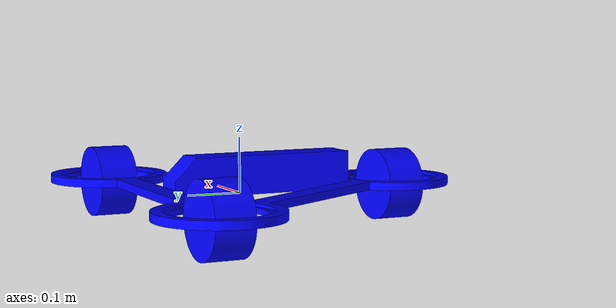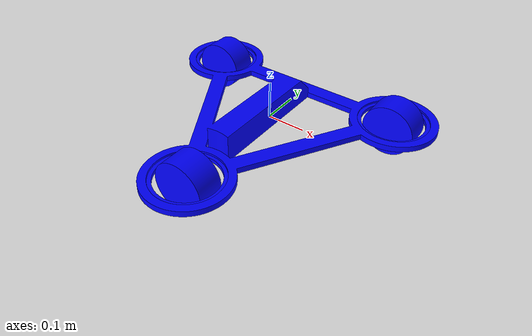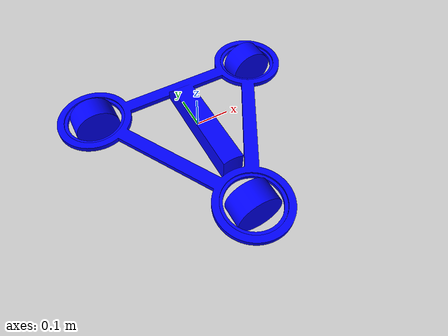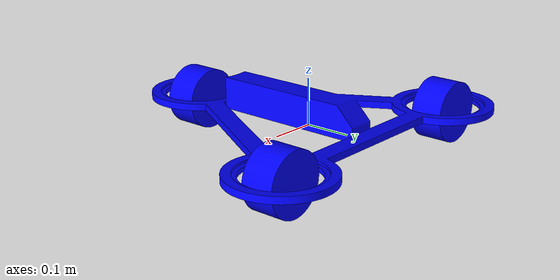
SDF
<?xml version="1.0" ?>

<sdf version="1.6">
    <model name="swerve">
        <link name="base_link">
        <pose> 0 0 0 0 0 0</pose>
        <inertial>
            <inertia>
                <ixx>0.1164</ixx>
                <iyy>0.1080</iyy>
                <izz>0.2243</izz>
                <ixy>0</ixy>
                <ixz>0</ixz>
                <iyz>0</iyz>
            </inertia>
            <mass>3.911</mass>
        </inertial>

        <collision name="collision">
        <geometry>
        <mesh>
            <scale>1 1 1</scale>
            <uri>package://inrof_sim/models/swerve/meshs/swerve_base.stl</uri>
        </mesh>
        </geometry>
        <surface>
            <friction>
                <ode>
                    <mu>0.3</mu>
                    <mu2>0.3</mu2>
                </ode>
            </friction>
        </surface>
        </collision>

        <visual name="visual">
        <geometry>
        <mesh>
            <scale>1 1 1</scale>
            <uri>package://inrof_sim/models/swerve/meshs/swerve_base.stl</uri>
        </mesh>
        </geometry>
        <material>
            <ambient>0.0 0.0 1.0 1.0</ambient>   <diffuse>0.0 0.0 1.0 1.0</diffuse>   <specular>0.1 0.1 0.1 1.0</specular> <emissive>0.0 0.0 0.0 0.0</emissive>
        </material>
        </visual>
        </link>

        <link name="wheel0">
        <pose>0.27 0.155885 0 0 0 0</pose>
        <inertial>
            <inertia>
                <ixx>0.003907</ixx>
                <iyy>0.005691</iyy>
                <izz>0.003907</izz>
                <ixy>0</ixy>
                <ixz>0</ixz>
                <iyz>0</iyz>
            </inertia>
            <mass>2.599764</mass>
        </inertial>

        <collision name="collision">
        <geometry>
        <mesh>
            <scale>1 1 1</scale>
            <uri>package://inrof_sim/models/swerve/meshs/swerve_wheel.stl</uri>
        </mesh>
        </geometry>
        <surface>
            <friction>
                <ode>
                    <mu>0.3</mu>
                    <mu2>0.3</mu2>
                </ode>
            </friction>
        </surface>
        </collision>

        <visual name="visual">
        <geometry>
        <mesh>
            <scale>1 1 1</scale>
            <uri>package://inrof_sim/models/swerve/meshs/swerve_wheel.stl</uri>
        </mesh>
        </geometry>
        <material>
            <ambient>0.0 0.0 1.0 1.0</ambient>   <diffuse>0.0 0.0 1.0 1.0</diffuse>   <specular>0.1 0.1 0.1 1.0</specular> <emissive>0.0 0.0 0.0 0.0</emissive>
        </material>
        </visual>
        </link>

        <link name="wheel1">
        <pose>-0.27 0.155885 0 0 0 0</pose>
        <inertial>
            <inertia>
                <ixx>0.003907</ixx>
                <iyy>0.005691</iyy>
                <izz>0.003907</izz>
                <ixy>0</ixy>
                <ixz>0</ixz>
                <iyz>0</iyz>
            </inertia>
            <mass>2.599764</mass>
        </inertial>

        <collision name="collision">
        <geometry>
        <mesh>
            <scale>1 1 1</scale>
            <uri>package://inrof_sim/models/swerve/meshs/swerve_wheel.stl</uri>
        </mesh>
        </geometry>
        <surface>
            <friction>
                <ode>
                    <mu>1.07</mu>
                    <mu2>1.07</mu2>
                </ode>
            </friction>
        </surface>
        </collision>

        <visual name="visual">
        <geometry>
        <mesh>
            <scale>1 1 1</scale>
            <uri>package://inrof_sim/models/swerve/meshs/swerve_wheel.stl</uri>
        </mesh>
        </geometry>
        <material>
            <ambient>0.0 0.0 1.0 1.0</ambient>   <diffuse>0.0 0.0 1.0 1.0</diffuse>   <specular>0.1 0.1 0.1 1.0</specular> <emissive>0.0 0.0 0.0 0.0</emissive>
        </material>
        </visual>
        </link>

        <link name="wheel2">
        <pose>0 -0.311 0 0 0 0</pose>
        <inertial>
            <inertia>
                <ixx>0.003907</ixx>
                <iyy>0.005691</iyy>
                <izz>0.003907</izz>
                <ixy>0</ixy>
                <ixz>0</ixz>
                <iyz>0</iyz>
            </inertia>
            <mass>2.599764</mass>
        </inertial>

        <collision name="collision">
        <geometry>
        <mesh>
            <scale>1 1 1</scale>
            <uri>package://inrof_sim/models/swerve/meshs/swerve_wheel.stl</uri>
        </mesh>
        </geometry>
        <surface>
            <friction>
                <ode>
                    <mu>1.07</mu>
                    <mu2>1.07</mu2>
                </ode>
            </friction>
        </surface>
        </collision>

        <visual name="visual">
        <geometry>
        <mesh>
            <scale>1 1 1</scale>
            <uri>package://inrof_sim/models/swerve/meshs/swerve_wheel.stl</uri>
        </mesh>
        </geometry>
        <material>
            <ambient>0.0 0.0 1.0 1.0</ambient>   <diffuse>0.0 0.0 1.0 1.0</diffuse>   <specular>0.1 0.1 0.1 1.0</specular> <emissive>0.0 0.0 0.0 0.0</emissive>
        </material>
        </visual>
        </link>

        <link name="stare0">
        <pose>0.27 0.155885 0 0 0 0</pose>
        <inertial>
            <inertia>
                <ixx>1</ixx>
                <ixy>0</ixy>
                <ixz>0</ixz>
                <iyy>1</iyy>
                <iyz>0</iyz>
                <izz>1</izz>
            </inertia>
            <mass>1.0</mass>
        </inertial>

        <collision name="collision">
        <geometry>
        <mesh>
            <scale>1 1 1</scale>
            <uri>package://inrof_sim/models/swerve/meshs/swerve_stare.stl</uri>
        </mesh>
        </geometry>
        <surface>
            <friction>
                <ode>
                    <mu>0.3</mu>
                    <mu2>0.3</mu2>
                </ode>
            </friction>
        </surface>
        </collision>

        <visual name="visual">
        <geometry>
        <mesh>
            <scale>1 1 1</scale>
            <uri>package://inrof_sim/models/swerve/meshs/swerve_stare.stl</uri>
        </mesh>
        </geometry>
        <material>
            <ambient>0.0 0.0 1.0 1.0</ambient>   <diffuse>0.0 0.0 1.0 1.0</diffuse>   <specular>0.1 0.1 0.1 1.0</specular> <emissive>0.0 0.0 0.0 0.0</emissive>
        </material>
        </visual>
        </link>

        <link name="stare1">
        <pose>-0.27 0.155885 0 0 0 0</pose>
        <inertial>
            <inertia>
                <ixx>1</ixx>
                <ixy>0</ixy>
                <ixz>0</ixz>
                <iyy>1</iyy>
                <iyz>0</iyz>
                <izz>1</izz>
            </inertia>
            <mass>1.0</mass>
        </inertial>

        <collision name="collision">
        <geometry>
        <mesh>
            <scale>1 1 1</scale>
            <uri>package://inrof_sim/models/swerve/meshs/swerve_stare.stl</uri>
        </mesh>
        </geometry>
        <surface>
            <friction>
                <ode>
                    <mu>0.3</mu>
                    <mu2>0.3</mu2>
                </ode>
            </friction>
        </surface>
        </collision>

        <visual name="visual">
        <geometry>
        <mesh>
            <scale>1 1 1</scale>
            <uri>package://inrof_sim/models/swerve/meshs/swerve_stare.stl</uri>
        </mesh>
        </geometry>
        <material>
            <ambient>0.0 0.0 1.0 1.0</ambient>   <diffuse>0.0 0.0 1.0 1.0</diffuse>   <specular>0.1 0.1 0.1 1.0</specular> <emissive>0.0 0.0 0.0 0.0</emissive>
        </material>
        </visual>
        </link>

        <link name="stare2">
        <pose>0 -0.311 0 0 0 0</pose>
        <inertial>
            <inertia>
                <ixx>1</ixx>
                <ixy>0</ixy>
                <ixz>0</ixz>
                <iyy>1</iyy>
                <iyz>0</iyz>
                <izz>1</izz>
            </inertia>
            <mass>1.0</mass>
        </inertial>

        <collision name="collision">
        <geometry>
        <mesh>
            <scale>1 1 1</scale>
            <uri>package://inrof_sim/models/swerve/meshs/swerve_stare.stl</uri>
        </mesh>
        </geometry>
        <surface>
            <friction>
                <ode>
                    <mu>0.3</mu>
                    <mu2>0.3</mu2>
                </ode>
            </friction>
        </surface>
        </collision>

        <visual name="visual">
        <geometry>
        <mesh>
            <scale>1 1 1</scale>
            <uri>package://inrof_sim/models/swerve/meshs/swerve_stare.stl</uri>
        </mesh>
        </geometry>
        <material>
            <ambient>0.0 0.0 1.0 1.0</ambient>   <diffuse>0.0 0.0 1.0 1.0</diffuse>   <specular>0.1 0.1 0.1 1.0</specular> <emissive>0.0 0.0 0.0 0.0</emissive>
        </material>
        </visual>
        </link>

        <joint name='stare0_joint' type='revolute'>
        <parent>base_link</parent>
        <child>stare0</child>
        <axis>
            <xyz>0 0 1</xyz>
        </axis>
        </joint>

        <joint name='stare1_joint' type='revolute'>
        <parent>base_link</parent>
        <child>stare1</child>
        <axis>
            <xyz>0 0 1</xyz>
        </axis>
        </joint>

        <joint name='stare2_joint' type='revolute'>
        <parent>base_link</parent>
        <child>stare2</child>
        <axis>
            <xyz>0 0 1</xyz>
        </axis>
        </joint>

        <joint name='wheel0_joint' type='revolute'>
        <parent>stare0</parent>
        <child>wheel0</child>
        <axis>
            <xyz>0 1 0</xyz>
        </axis>
        </joint>

        <joint name='wheel1_joint' type='revolute'>
        <parent>stare1</parent>
        <child>wheel1</child>
        <axis>
            <xyz>0 1 0</xyz>
        </axis>
        </joint>

        <joint name='wheel2_joint' type='revolute'>
        <parent>stare2</parent>
        <child>wheel2</child>
        <axis>
            <xyz>0 1 0</xyz>
        </axis>
        </joint>

        <plugin name="ignition::gazebo::systems::JointPositionController" filename="libignition-gazebo6-joint-position-controller-system.so">
            <joint_name>stare0_joint</joint_name>
            <topic>/swerve/swerve_pos0</topic>
            <p_gain>10</p_gain>
            <d_gain>5</d_gain>
        </plugin>
        <plugin name="ignition::gazebo::systems::JointPositionController" filename="libignition-gazebo6-joint-position-controller-system.so">
            <joint_name>stare1_joint</joint_name>
            <topic>/swerve/swerve_pos1</topic>
            <p_gain>10</p_gain>
            <d_gain>5</d_gain>
        </plugin>
        <plugin name="ignition::gazebo::systems::JointPositionController" filename="libignition-gazebo6-joint-position-controller-system.so">
            <joint_name>stare2_joint</joint_name>
            <topic>/swerve/swerve_pos2</topic>
            <p_gain>10</p_gain>
            <d_gain>5</d_gain>
        </plugin>

        <plugin name="ignition::gazebo::systems::JointController" filename="libignition-gazebo6-joint-controller-system.so">
            <joint_name>wheel0_joint</joint_name>
            <topic>/swerve/wheel_vel0</topic>
            <use_force_commands>true</use_force_commands>
            <p_gain>0.2</p_gain>
            <i_gain>0.01</i_gain>
        </plugin>
        <plugin name="ignition::gazebo::systems::JointController" filename="libignition-gazebo6-joint-controller-system.so">
            <joint_name>wheel1_joint</joint_name>
            <topic>/swerve/wheel_vel1</topic>
            <use_force_commands>true</use_force_commands>
            <p_gain>0.2</p_gain>
            <i_gain>0.01</i_gain>
        </plugin>
        <plugin name="ignition::gazebo::systems::JointController" filename="libignition-gazebo6-joint-controller-system.so">
            <joint_name>wheel2_joint</joint_name>
            <topic>/swerve/wheel_vel2</topic>
            <use_force_commands>true</use_force_commands>
            <p_gain>0.2</p_gain>
            <i_gain>0.01</i_gain>
        </plugin>

    </model>
</sdf>
